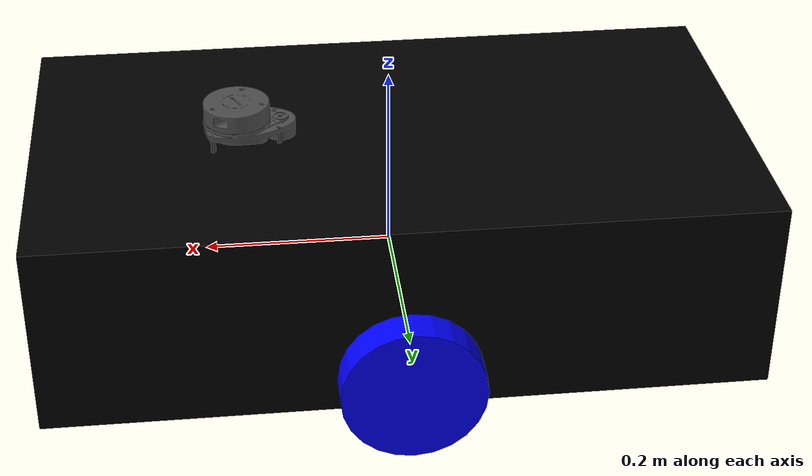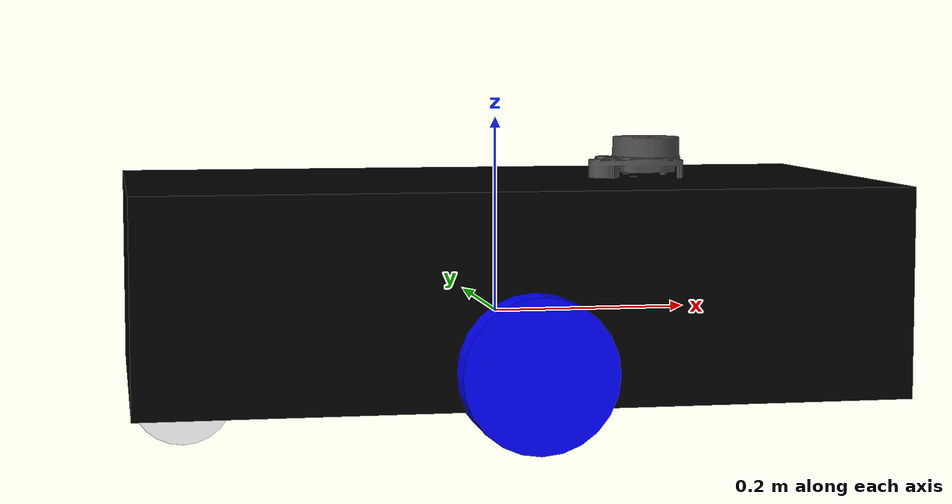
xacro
<?xml version="1.0"?>

<robot name="bumperbot" xmlns:xacro="http://ros.org/wiki/xacro">

  <!-- Start GZ or Ignition depending on ROS 2 Version -->
  <xacro:arg name="is_ignition" default="true"/>

  <!-- Load Simulated or Real Hardware Interfaces -->
  <xacro:arg name="is_sim" default="true"/>

  <!-- Include Gazebo Parameters -->
  <xacro:include filename="$(find bumperbot_description)/urdf/bumperbot_gazebo.xacro" />

  <!-- Include ros2_control Plugins -->
  <xacro:include filename="$(find bumperbot_description)/urdf/bumperbot_ros2_control.xacro" />

  <!-- robot properties (International System of Units => using meters and kilograms) -->
  <xacro:property name="base_length" value="0.75387"/>
  <xacro:property name="base_width" value="0.4174"/>
  <xacro:property name="base_height" value="0.2078"/>
  <xacro:property name="base_mass" value="20.0"/>
  <xacro:property name="wheel_radius" value="0.075"/>
  <xacro:property name="wheel_thickness" value="0.075"/>
  <xacro:property name="wheel_mass" value="0.23"/>
  <xacro:property name="caster_wheel_radius" value="0.05"/>
  <xacro:property name="caster_wheel_thickness" value="0.04"/>
  <xacro:property name="caster_wheel_mass" value="0.05"/>

  <!-- Base Links and Joints -->
  <link name="base_footprint"/>
  <link name="base_link">
        <inertial>
            <mass value="${base_mass}"/>
            <inertia ixx="${(1/12) * base_mass * ((base_width * base_width) + (base_height * base_height))}"
                     ixy="0.0"
                     ixz="0.0"
                     iyy="${(1/12) * base_mass * ((base_length * base_length) + (base_height * base_height))}"
                     iyz="0.0"
                     izz="${(1/12) * base_mass * ((base_length * base_length) + (base_width * base_width))}"/>
            <origin xyz="0 0 0" rpy="0 0 0"/>
        </inertial>
    <visual>
      <origin xyz="0 0 0" rpy="0 0 0" />
      <geometry>
                <box size="${base_length} ${base_width} ${base_height}"/>
      </geometry>
      <material name="black"/>
    </visual>
    <collision>
        <geometry>
            <box size="${base_length} ${base_width} ${base_height}"/>
        </geometry>
        <origin xyz="0 0 0" rpy="0 0 0"/>
    </collision>
  </link>

  <joint name="base_joint" type="fixed">
    <parent link="base_footprint"/>
    <child link="base_link" />
    <origin xyz="0 0 0.033" rpy="0 0 0"/>
  </joint>

  <link name="wheel_right_link">
    <inertial>
        <mass value="${wheel_mass}"/>
        <inertia ixx="${(1/12) * wheel_mass * (3 * wheel_radius * wheel_radius + wheel_thickness * wheel_thickness)}"
                 ixy="0.0"
                 ixz="0.0"
                 iyy="${(1/12) * wheel_mass * (3 * wheel_radius * wheel_radius + wheel_thickness * wheel_thickness)}"
                 iyz="0.0"
                 izz="${(1/2) * wheel_mass * (wheel_radius * wheel_radius)}"/>
        <origin xyz="0 0 0" rpy="0 0 0"/>
    </inertial>
    <visual>
        <geometry>
            <cylinder length="${wheel_thickness}" radius="${wheel_radius}"/>
        </geometry>
        <origin xyz="0 0 0" rpy="0 0 0"/>
        <material name="blue"/>
    </visual>
    <collision>
        <geometry>
            <cylinder length="${wheel_thickness}" radius="${wheel_radius}"/>
        </geometry>
        <origin xyz="0 0 0" rpy="0 0 0"/>
    </collision>
  </link>

  <joint name="wheel_right_joint" type="continuous">
    <origin xyz="0 ${-(base_width/2)} ${-((base_height/2) - wheel_radius) - 0.0375}" rpy="${pi/2} 0 0"/>
    <parent link="base_link" />
    <child link="wheel_right_link" />
    <axis xyz="0 0 1" />
  </joint>

  <link name="wheel_left_link">
    <inertial>
        <mass value="${wheel_mass}"/>
        <inertia ixx="${(1/12) * wheel_mass * (3 * wheel_radius * wheel_radius + wheel_thickness * wheel_thickness)}"
                 ixy="0.0"
                 ixz="0.0"
                 iyy="${(1/12) * wheel_mass * (3 * wheel_radius * wheel_radius + wheel_thickness * wheel_thickness)}"
                 iyz="0.0"
                 izz="${(1/2) * wheel_mass * (wheel_radius * wheel_radius)}"/>
        <origin xyz="0 0 0" rpy="0 0 0"/>
    </inertial>

    <visual>
        <geometry>
            <cylinder length="${wheel_thickness}" radius="${wheel_radius}"/>
        </geometry>
        <origin xyz="0 0 0" rpy="0 0 0"/>
        <material name="blue"/>
    </visual>
    <collision>
        <geometry>
            <cylinder length="${wheel_thickness}" radius="${wheel_radius}"/>
        </geometry>
        <origin xyz="0 0 0" rpy="0 0 0"/>
    </collision>
  </link>

  <joint name="wheel_left_joint" type="continuous">
    <origin xyz="0 ${(base_width/2)} ${-((base_height/2) - wheel_radius) - 0.0375}" rpy="-${pi/2} 0 0"/>
    <parent link="base_link" />
    <child link="wheel_left_link" />
    <axis xyz="0 0 1" />
  </joint>

    <!--edabot caster wheel front link and joint -->
    <link name="caster_wheel_front_link">
        <inertial>
            <mass value="${caster_wheel_mass}"/>
            <inertia ixx="${(2/5) * caster_wheel_mass * (caster_wheel_radius * caster_wheel_radius)}"
                     ixy="0.0"
                     ixz="0.0"
                     iyy="${(2/5) * caster_wheel_mass * (caster_wheel_radius * caster_wheel_radius)}"
                     iyz="0.0"
                     izz="${(2/5) * caster_wheel_mass * (caster_wheel_radius * caster_wheel_radius)}"/>
            <origin xyz="0 0 0" rpy="0 0 0"/>
        </inertial>
        <visual>
            <geometry>
                <cylinder length="${caster_wheel_thickness}" radius="${caster_wheel_radius}"/>
            </geometry>
            <origin xyz="0 0 0" rpy="0 0 0"/>
            <material name="red"/>
        </visual>
        <collision>
            <geometry>
                <sphere radius="${caster_wheel_radius}"/>
            </geometry>
            <origin xyz="0 0 0" rpy="0 0 0"/>
        </collision>
    </link>

    <joint name="base_to_caster_wheel_front_joint" type="fixed">
        <parent link="base_link"/>
        <child link="caster_wheel_front_link"/>
        <origin xyz="${(base_length/2) - (caster_wheel_radius)} ${(base_width/4)} ${-((base_height/2) - caster_wheel_radius) - 0.0375}" rpy="${pi/2} 0 0"/>
    </joint>

    <!-- caster wheel rear link and joint -->
    <link name="caster_wheel_rear_link">
        <inertial>
            <mass value="${caster_wheel_mass}"/>
            <inertia ixx="${(2/5) * caster_wheel_mass * (caster_wheel_radius * caster_wheel_radius)}"
                     ixy="0.0"
                     ixz="0.0"
                     iyy="${(2/5) * caster_wheel_mass * (caster_wheel_radius * caster_wheel_radius)}"
                     iyz="0.0"
                     izz="${(2/5) * caster_wheel_mass * (caster_wheel_radius * caster_wheel_radius)}"/>
            <origin xyz="0 0 0" rpy="0 0 0"/>
        </inertial>
        <visual>
            <geometry>
                <cylinder length="${caster_wheel_thickness}" radius="${caster_wheel_radius}"/>
            </geometry>
            <origin xyz="0 0 0" rpy="0 0 0"/>
            <material name="white"/>
        </visual>
        <collision>
            <geometry>
                <sphere radius="${caster_wheel_radius}"/>
            </geometry>
            <origin xyz="0 0 0" rpy="0 0 0"/>
        </collision>
    </link>

    <joint name="base_to_caster_wheel_rear_joint" type="fixed">
        <parent link="base_link"/>
        <child link="caster_wheel_rear_link"/>
        <origin xyz="${-(base_length/2) + (caster_wheel_radius)} ${-(base_width/4)} ${-((base_height/2) - caster_wheel_radius) - 0.0375}" rpy="${pi/2} 0 0"/>
    </joint>

  <link name="laser_link">
    <inertial>
      <origin xyz="0 0 0" rpy="0 0 0" />
      <mass value="0.073084435549317" />
      <inertia ixx="1.96074931730795E-05" ixy="-3.62091076640009E-07" ixz="4.28230084046735E-07"
               iyy="2.40983835136327E-05" iyz="1.50180909250652E-08"
               izz="4.14184164228595E-05" />
    </inertial>
    <visual>
      <origin xyz="0 0 0" rpy="0 0 0" />
      <geometry>
        <mesh filename="package://bumperbot_description/meshes/laser_link.STL" />
      </geometry>
      <material name="dark_grey"/>
    </visual>
    <collision>
      <origin xyz="0 0 0" rpy="0 0 0" />
      <geometry>
        <mesh filename="package://bumperbot_description/meshes/laser_link.STL" />
      </geometry>
    </collision>
  </link>

  <joint name="laser_joint" type="fixed">
    <origin xyz="0.16 0 ${((base_height/2) + 0.03)}" rpy="0 0 0"/>
    <parent link="base_link" />
    <child link="laser_link" />
    <axis xyz="0 0 0" />
  </joint>

  <!-- some material common properties (color) -->
  <material name="white">
      <color rgba="1 1 1 1"/>
  </material>

  <material name="blue">
    <color rgba="0 0 1 1"/>
  </material>

  <material name="black">
    <color rgba="0 0 0 1"/>
  </material>
  <material name="silver">
    <color rgba="0.79 0.82 0.93 1"/>
  </material>
  <material name="dark_grey">
    <color rgba="0.3 0.3 0.3 1"/>
  </material>

</robot>
